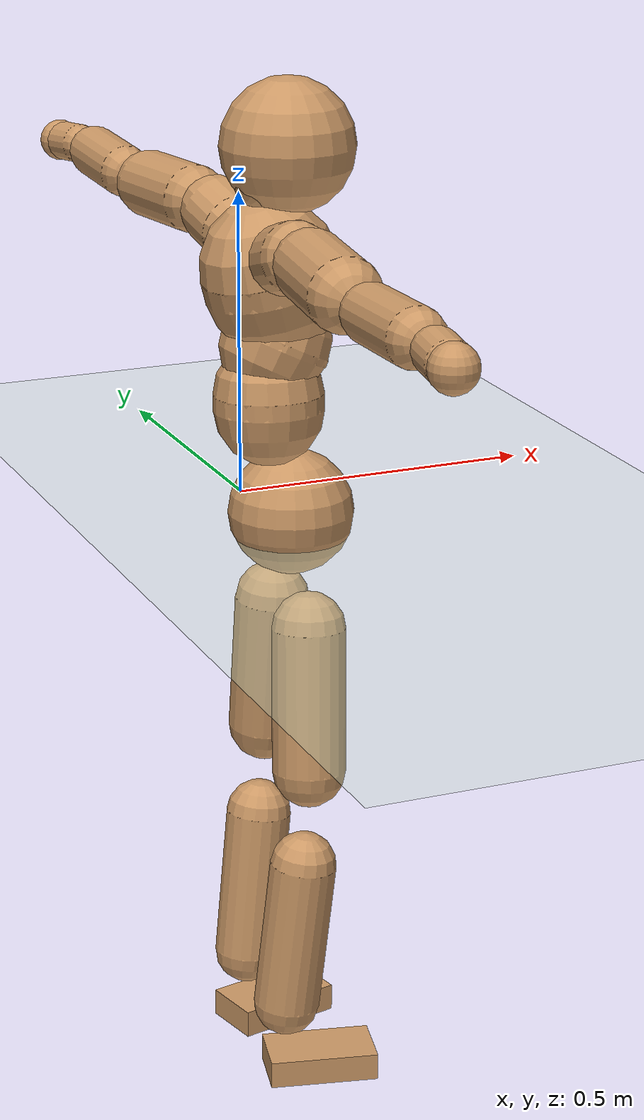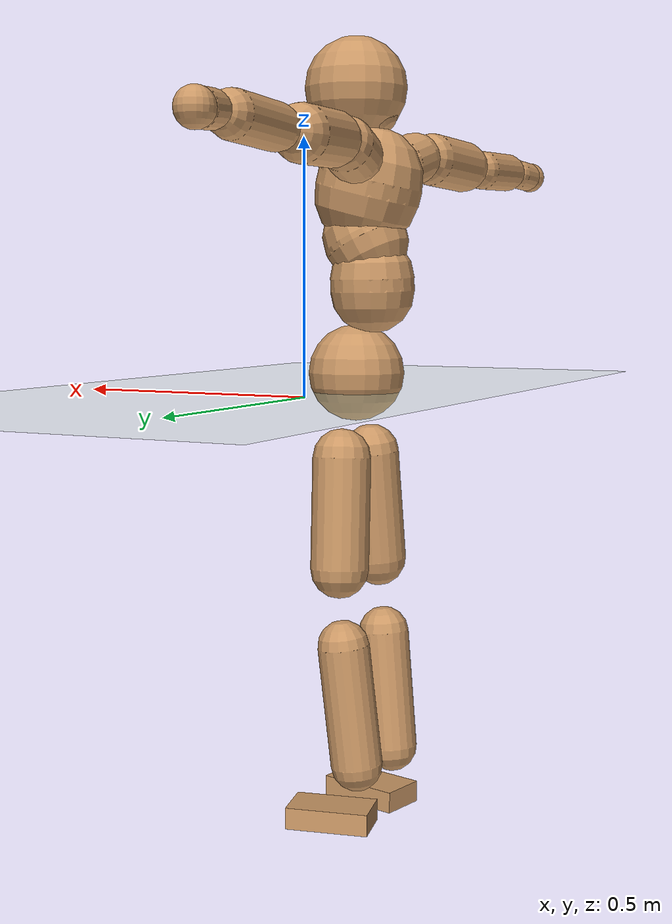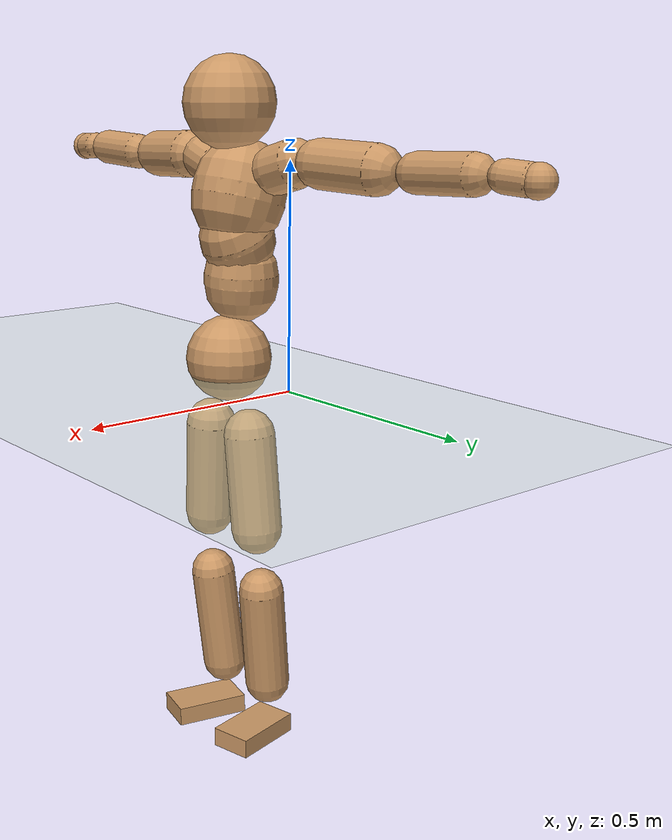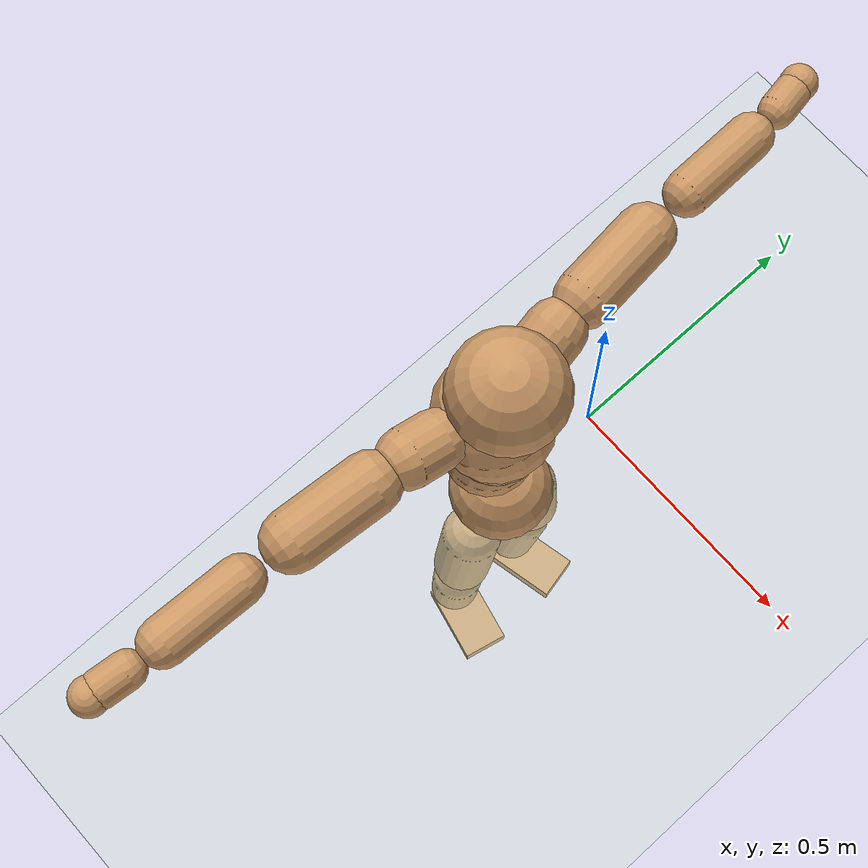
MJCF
<mujoco model="humanoid">
  <compiler coordinate="local"/>
  <default>
    <joint damping="0.0" armature="0.01" stiffness="0.0" limited="true"/>
    <geom conaffinity="1" condim="3" contype="7" margin="0.001" rgba="0.8 0.6 .4 1"/>
  </default>
  <asset>
    <texture type="skybox" builtin="gradient" rgb1=".4 .5 .6" rgb2="0 0 0" width="100" height="100"/>
    <texture builtin="flat" height="1278" mark="cross" markrgb="1 1 1" name="texgeom" random="0.01" rgb1="0.8 0.6 0.4" rgb2="0.8 0.6 0.4" type="cube" width="127"/>
    <texture builtin="checker" height="100" name="texplane" rgb1="0 0 0" rgb2="0.8 0.8 0.8" type="2d" width="100"/>
    <material name="MatPlane" reflectance="0.5" shininess="1" specular="1" texrepeat="60 60" texture="texplane"/>
    <material name="geom" texture="texgeom" texuniform="true"/>
  </asset>
  <worldbody>
    <light cutoff="100" diffuse="1 1 1" dir="-0 0 -1.3" directional="true" exponent="1" pos="0 0 1.3" specular=".1 .1 .1"/>
    <geom conaffinity="1" condim="3" name="floor" pos="0 0 0" rgba="0.8 0.9 0.8 1" size="100 100 .2" type="plane" material="MatPlane"/>
    <body name="Pelvis" pos="-0.0029 -0.226 0.0376">
      <freejoint name="Pelvis"/>
      <geom type="sphere" contype="1" conaffinity="1" density="500" size="0.0999" pos="0.0000 0.0000 0.0000" name="Pelvis"/>
      <body name="L_Hip" pos="-0.0012 0.0671 -0.0945">
        <joint name="L_Hip_x" type="hinge" pos="0 0 0" axis="1 0 0" stiffness="800" damping="80" armature="0.02" range="-180.0000 180.0000"/>
        <joint name="L_Hip_y" type="hinge" pos="0 0 0" axis="0 1 0" stiffness="800" damping="80" armature="0.02" range="-180.0000 180.0000"/>
        <joint name="L_Hip_z" type="hinge" pos="0 0 0" axis="0 0 1" stiffness="800" damping="80" armature="0.02" range="-180.0000 180.0000"/>
        <geom type="capsule" contype="1" conaffinity="1" density="500" fromto="-0.0017 0.0067 -0.0759 -0.0069 0.0266 -0.3037" size="0.0598" name="L_Hip"/>
        <body name="L_Knee" pos="-0.0087 0.0333 -0.3796">
          <joint name="L_Knee_x" type="hinge" pos="0 0 0" axis="1 0 0" stiffness="800" damping="80" armature="0.02" range="-180.0000 180.0000"/>
          <joint name="L_Knee_y" type="hinge" pos="0 0 0" axis="0 1 0" stiffness="800" damping="80" armature="0.02" range="-180.0000 180.0000"/>
          <joint name="L_Knee_z" type="hinge" pos="0 0 0" axis="0 0 1" stiffness="800" damping="80" armature="0.02" range="-180.0000 180.0000"/>
          <geom type="capsule" contype="1" conaffinity="1" density="500" fromto="-0.0088 -0.0031 -0.0829 -0.0351 -0.0124 -0.3316" size="0.0536" name="L_Knee"/>
          <body name="L_Ankle" pos="-0.0439 -0.0155 -0.4145">
            <joint name="L_Ankle_x" type="hinge" pos="0 0 0" axis="1 0 0" stiffness="800" damping="80" armature="0.02" range="-180.0000 180.0000"/>
            <joint name="L_Ankle_y" type="hinge" pos="0 0 0" axis="0 1 0" stiffness="800" damping="80" armature="0.02" range="-180.0000 180.0000"/>
            <joint name="L_Ankle_z" type="hinge" pos="0 0 0" axis="0 0 1" stiffness="800" damping="80" armature="0.02" range="-180.0000 180.0000"/>
            <geom type="box" contype="1" conaffinity="1" density="500" pos="0.0611 0.0134 -0.0284" size="0.0864 0.0495 0.0225" quat="0.9942 0.0000 0.0000 0.1080" name="L_Ankle"/>
            <body name="L_Toe" pos="0.1223 0.0269 -0.0568">
              <joint name="L_Toe_x" type="hinge" pos="0 0 0" axis="1 0 0" stiffness="500" damping="50" armature="0.02" range="-180.0000 180.0000"/>
              <joint name="L_Toe_y" type="hinge" pos="0 0 0" axis="0 1 0" stiffness="500" damping="50" armature="0.02" range="-180.0000 180.0000"/>
              <joint name="L_Toe_z" type="hinge" pos="0 0 0" axis="0 0 1" stiffness="500" damping="50" armature="0.02" range="-180.0000 180.0000"/>
              <geom type="box" contype="1" conaffinity="1" density="500" pos="0.0000 0.0000 0.0273" size="0.0011 0.0025 0.0011" quat="0.9935 0.0000 0.0000 0.1139" name="L_Toe"/>
            </body>
          </body>
        </body>
      </body>
      <body name="R_Hip" pos="0.0025 -0.0663 -0.0945">
        <joint name="R_Hip_x" type="hinge" pos="0 0 0" axis="1 0 0" stiffness="800" damping="80" armature="0.02" range="-180.0000 180.0000"/>
        <joint name="R_Hip_y" type="hinge" pos="0 0 0" axis="0 1 0" stiffness="800" damping="80" armature="0.02" range="-180.0000 180.0000"/>
        <joint name="R_Hip_z" type="hinge" pos="0 0 0" axis="0 0 1" stiffness="800" damping="80" armature="0.02" range="-180.0000 180.0000"/>
        <geom type="capsule" contype="1" conaffinity="1" density="500" fromto="-0.0028 -0.0074 -0.0778 -0.0112 -0.0296 -0.3112" size="0.0588" name="R_Hip"/>
        <body name="R_Knee" pos="-0.014 -0.037 -0.389">
          <joint name="R_Knee_x" type="hinge" pos="0 0 0" axis="1 0 0" stiffness="800" damping="80" armature="0.02" range="-180.0000 180.0000"/>
          <joint name="R_Knee_y" type="hinge" pos="0 0 0" axis="0 1 0" stiffness="800" damping="80" armature="0.02" range="-180.0000 180.0000"/>
          <joint name="R_Knee_z" type="hinge" pos="0 0 0" axis="0 0 1" stiffness="800" damping="80" armature="0.02" range="-180.0000 180.0000"/>
          <geom type="capsule" contype="1" conaffinity="1" density="500" fromto="-0.0085 0.0035 -0.0833 -0.0339 0.0139 -0.3331" size="0.0534" name="R_Knee"/>
          <body name="R_Ankle" pos="-0.0424 0.0174 -0.4164">
            <joint name="R_Ankle_x" type="hinge" pos="0 0 0" axis="1 0 0" stiffness="800" damping="80" armature="0.02" range="-180.0000 180.0000"/>
            <joint name="R_Ankle_y" type="hinge" pos="0 0 0" axis="0 1 0" stiffness="800" damping="80" armature="0.02" range="-180.0000 180.0000"/>
            <joint name="R_Ankle_z" type="hinge" pos="0 0 0" axis="0 0 1" stiffness="800" damping="80" armature="0.02" range="-180.0000 180.0000"/>
            <geom type="box" contype="1" conaffinity="1" density="500" pos="0.0632 -0.0143 -0.0246" size="0.0884 0.05 0.0223" quat="0.9938 0.0000 0.0000 -0.1112" name="R_Ankle"/>
            <body name="R_Toe" pos="0.1263 -0.0286 -0.0493">
              <joint name="R_Toe_x" type="hinge" pos="0 0 0" axis="1 0 0" stiffness="500" damping="50" armature="0.02" range="-180.0000 180.0000"/>
              <joint name="R_Toe_y" type="hinge" pos="0 0 0" axis="0 1 0" stiffness="500" damping="50" armature="0.02" range="-180.0000 180.0000"/>
              <joint name="R_Toe_z" type="hinge" pos="0 0 0" axis="0 0 1" stiffness="500" damping="50" armature="0.02" range="-180.0000 180.0000"/>
              <geom type="box" contype="1" conaffinity="1" density="500" pos="0.0000 0.0000 0.0244" size="0.0011 0.0025 0.0011" quat="0.9948 0.0000 0.0000 -0.1021" name="R_Toe"/>
            </body>
          </body>
        </body>
      </body>
      <body name="Torso" pos="-0.0364 -0.0023 0.1159">
        <joint name="Torso_x" type="hinge" pos="0 0 0" axis="1 0 0" stiffness="1000" damping="100" armature="0.02" range="-180.0000 180.0000"/>
        <joint name="Torso_y" type="hinge" pos="0 0 0" axis="0 1 0" stiffness="1000" damping="100" armature="0.02" range="-180.0000 180.0000"/>
        <joint name="Torso_z" type="hinge" pos="0 0 0" axis="0 0 1" stiffness="1000" damping="100" armature="0.02" range="-180.0000 180.0000"/>
        <geom type="capsule" contype="1" conaffinity="1" density="500" fromto="0.0000 0.0042 0.0788 0.0000 0.0028 0.0525" size="0.0867" name="Torso"/>
        <body name="Spine" pos="0.0001 0.0071 0.1313">
          <joint name="Spine_x" type="hinge" pos="0 0 0" axis="1 0 0" stiffness="1000" damping="100" armature="0.02" range="-180.0000 180.0000"/>
          <joint name="Spine_y" type="hinge" pos="0 0 0" axis="0 1 0" stiffness="1000" damping="100" armature="0.02" range="-180.0000 180.0000"/>
          <joint name="Spine_z" type="hinge" pos="0 0 0" axis="0 0 1" stiffness="1000" damping="100" armature="0.02" range="-180.0000 180.0000"/>
          <geom type="capsule" contype="1" conaffinity="1" density="500" fromto="0.0161 0.0008 0.0326 0.0107 0.0005 0.0218" size="0.0864" name="Spine"/>
          <body name="Chest" pos="0.0269 0.0014 0.0544">
            <joint name="Chest_x" type="hinge" pos="0 0 0" axis="1 0 0" stiffness="1000" damping="100" armature="0.02" range="-180.0000 180.0000"/>
            <joint name="Chest_y" type="hinge" pos="0 0 0" axis="0 1 0" stiffness="1000" damping="100" armature="0.02" range="-180.0000 180.0000"/>
            <joint name="Chest_z" type="hinge" pos="0 0 0" axis="0 0 1" stiffness="1000" damping="100" armature="0.02" range="-180.0000 180.0000"/>
            <geom type="capsule" contype="1" conaffinity="1" density="500" fromto="-0.0243 -0.0013 0.0932 -0.0162 -0.0009 0.0621" size="0.1081" name="Chest"/>
            <body name="Neck" pos="-0.044 -0.003 0.2154">
              <joint name="Neck_x" type="hinge" pos="0 0 0" axis="1 0 0" stiffness="500" damping="50" armature="0.02" range="-180.0000 180.0000"/>
              <joint name="Neck_y" type="hinge" pos="0 0 0" axis="0 1 0" stiffness="500" damping="50" armature="0.02" range="-180.0000 180.0000"/>
              <joint name="Neck_z" type="hinge" pos="0 0 0" axis="0 0 1" stiffness="500" damping="50" armature="0.02" range="-180.0000 180.0000"/>
              <geom type="capsule" contype="1" conaffinity="1" density="500" fromto="0.0104 0.0009 0.0121 0.0415 0.0036 0.0486" size="0.0471" name="Neck"/>
              <body name="Head" pos="0.0518 0.0045 0.0607">
                <joint name="Head_x" type="hinge" pos="0 0 0" axis="1 0 0" stiffness="500" damping="50" armature="0.02" range="-180.0000 180.0000"/>
                <joint name="Head_y" type="hinge" pos="0 0 0" axis="0 1 0" stiffness="500" damping="50" armature="0.02" range="-180.0000 180.0000"/>
                <joint name="Head_z" type="hinge" pos="0 0 0" axis="0 0 1" stiffness="500" damping="50" armature="0.02" range="-180.0000 180.0000"/>
                <geom type="sphere" contype="1" conaffinity="1" density="500" size="0.1052" pos="0.0000 0.0000 0.0000" name="Head"/>
              </body>
            </body>
            <body name="L_Thorax" pos="-0.0375 0.0858 0.1266">
              <joint name="L_Thorax_x" type="hinge" pos="0 0 0" axis="1 0 0" stiffness="500" damping="50" armature="0.02" range="-180.0000 180.0000"/>
              <joint name="L_Thorax_y" type="hinge" pos="0 0 0" axis="0 1 0" stiffness="500" damping="50" armature="0.02" range="-180.0000 180.0000"/>
              <joint name="L_Thorax_z" type="hinge" pos="0 0 0" axis="0 0 1" stiffness="500" damping="50" armature="0.02" range="-180.0000 180.0000"/>
              <geom type="capsule" contype="1" conaffinity="1" density="500" fromto="-0.0026 0.0192 0.0054 -0.0104 0.0770 0.0214" size="0.0557" name="L_Thorax"/>
              <body name="L_Shoulder" pos="-0.013 0.0962 0.0268">
                <joint name="L_Shoulder_x" type="hinge" pos="0 0 0" axis="1 0 0" stiffness="500" damping="50" armature="0.02" range="-720.0000 720.0000"/>
                <joint name="L_Shoulder_y" type="hinge" pos="0 0 0" axis="0 1 0" stiffness="500" damping="50" armature="0.02" range="-720.0000 720.0000"/>
                <joint name="L_Shoulder_z" type="hinge" pos="0 0 0" axis="0 0 1" stiffness="500" damping="50" armature="0.02" range="-720.0000 720.0000"/>
                <geom type="capsule" contype="1" conaffinity="1" density="500" fromto="-0.0058 0.0533 -0.0018 -0.0233 0.2133 -0.0072" size="0.0545" name="L_Shoulder"/>
                <body name="L_Elbow" pos="-0.0291 0.2667 -0.009">
                  <joint name="L_Elbow_x" type="hinge" pos="0 0 0" axis="1 0 0" stiffness="500" damping="50" armature="0.02" range="-720.0000 720.0000"/>
                  <joint name="L_Elbow_y" type="hinge" pos="0 0 0" axis="0 1 0" stiffness="500" damping="50" armature="0.02" range="-720.0000 720.0000"/>
                  <joint name="L_Elbow_z" type="hinge" pos="0 0 0" axis="0 0 1" stiffness="500" damping="50" armature="0.02" range="-720.0000 720.0000"/>
                  <geom type="capsule" contype="1" conaffinity="1" density="500" fromto="-0.0006 0.0510 0.0017 -0.0024 0.2041 0.0070" size="0.0428" name="L_Elbow"/>
                  <body name="L_Wrist" pos="-0.003 0.2551 0.0087">
                    <joint name="L_Wrist_x" type="hinge" pos="0 0 0" axis="1 0 0" stiffness="300" damping="30" armature="0.02" range="-180.0000 180.0000"/>
                    <joint name="L_Wrist_y" type="hinge" pos="0 0 0" axis="0 1 0" stiffness="300" damping="30" armature="0.02" range="-180.0000 180.0000"/>
                    <joint name="L_Wrist_z" type="hinge" pos="0 0 0" axis="0 0 1" stiffness="300" damping="30" armature="0.02" range="-180.0000 180.0000"/>
                    <geom type="capsule" contype="1" conaffinity="1" density="500" fromto="-0.0033 0.0173 -0.0013 -0.0130 0.0694 -0.0051" size="0.0331" name="L_Wrist"/>
                    <body name="L_Hand" pos="-0.0163 0.0867 -0.0064">
                      <joint name="L_Hand_x" type="hinge" pos="0 0 0" axis="1 0 0" stiffness="300" damping="30" armature="0.02" range="-180.0000 180.0000"/>
                      <joint name="L_Hand_y" type="hinge" pos="0 0 0" axis="0 1 0" stiffness="300" damping="30" armature="0.02" range="-180.0000 180.0000"/>
                      <joint name="L_Hand_z" type="hinge" pos="0 0 0" axis="0 0 1" stiffness="300" damping="30" armature="0.02" range="-180.0000 180.0000"/>
                      <geom type="sphere" contype="1" conaffinity="1" density="500" size="0.0346" pos="0.0000 0.0000 0.0000" name="L_Hand"/>
                    </body>
                  </body>
                </body>
              </body>
            </body>
            <body name="R_Thorax" pos="-0.0402 -0.0893 0.1239">
              <joint name="R_Thorax_x" type="hinge" pos="0 0 0" axis="1 0 0" stiffness="500" damping="50" armature="0.02" range="-180.0000 180.0000"/>
              <joint name="R_Thorax_y" type="hinge" pos="0 0 0" axis="0 1 0" stiffness="500" damping="50" armature="0.02" range="-180.0000 180.0000"/>
              <joint name="R_Thorax_z" type="hinge" pos="0 0 0" axis="0 0 1" stiffness="500" damping="50" armature="0.02" range="-180.0000 180.0000"/>
              <geom type="capsule" contype="1" conaffinity="1" density="500" fromto="-0.0022 -0.0203 0.0058 -0.0086 -0.0812 0.0233" size="0.0548" name="R_Thorax"/>
              <body name="R_Shoulder" pos="-0.0108 -0.1015 0.0291">
                <joint name="R_Shoulder_x" type="hinge" pos="0 0 0" axis="1 0 0" stiffness="500" damping="50" armature="0.02" range="-720.0000 720.0000"/>
                <joint name="R_Shoulder_y" type="hinge" pos="0 0 0" axis="0 1 0" stiffness="500" damping="50" armature="0.02" range="-720.0000 720.0000"/>
                <joint name="R_Shoulder_z" type="hinge" pos="0 0 0" axis="0 0 1" stiffness="500" damping="50" armature="0.02" range="-720.0000 720.0000"/>
                <geom type="capsule" contype="1" conaffinity="1" density="500" fromto="-0.0046 -0.0517 -0.0018 -0.0185 -0.2067 -0.0071" size="0.0562" name="R_Shoulder"/>
                <body name="R_Elbow" pos="-0.0232 -0.2583 -0.0089">
                  <joint name="R_Elbow_x" type="hinge" pos="0 0 0" axis="1 0 0" stiffness="500" damping="50" armature="0.02" range="-720.0000 720.0000"/>
                  <joint name="R_Elbow_y" type="hinge" pos="0 0 0" axis="0 1 0" stiffness="500" damping="50" armature="0.02" range="-720.0000 720.0000"/>
                  <joint name="R_Elbow_z" type="hinge" pos="0 0 0" axis="0 0 1" stiffness="500" damping="50" armature="0.02" range="-720.0000 720.0000"/>
                  <geom type="capsule" contype="1" conaffinity="1" density="500" fromto="-0.0015 -0.0521 0.0018 -0.0061 -0.2086 0.0071" size="0.0438" name="R_Elbow"/>
                  <body name="R_Wrist" pos="-0.0076 -0.2607 0.0089">
                    <joint name="R_Wrist_x" type="hinge" pos="0 0 0" axis="1 0 0" stiffness="300" damping="30" armature="0.02" range="-180.0000 180.0000"/>
                    <joint name="R_Wrist_y" type="hinge" pos="0 0 0" axis="0 1 0" stiffness="300" damping="30" armature="0.02" range="-180.0000 180.0000"/>
                    <joint name="R_Wrist_z" type="hinge" pos="0 0 0" axis="0 0 1" stiffness="300" damping="30" armature="0.02" range="-180.0000 180.0000"/>
                    <geom type="capsule" contype="1" conaffinity="1" density="500" fromto="-0.0020 -0.0175 -0.0010 -0.0081 -0.0701 -0.0040" size="0.0342" name="R_Wrist"/>
                    <body name="R_Hand" pos="-0.0102 -0.0876 -0.005">
                      <joint name="R_Hand_x" type="hinge" pos="0 0 0" axis="1 0 0" stiffness="300" damping="30" armature="0.02" range="-180.0000 180.0000"/>
                      <joint name="R_Hand_y" type="hinge" pos="0 0 0" axis="0 1 0" stiffness="300" damping="30" armature="0.02" range="-180.0000 180.0000"/>
                      <joint name="R_Hand_z" type="hinge" pos="0 0 0" axis="0 0 1" stiffness="300" damping="30" armature="0.02" range="-180.0000 180.0000"/>
                      <geom type="sphere" contype="1" conaffinity="1" density="500" size="0.0353" pos="0.0000 0.0000 0.0000" name="R_Hand"/>
                    </body>
                  </body>
                </body>
              </body>
            </body>
          </body>
        </body>
      </body>
    </body>
  </worldbody>
  <actuator>
    <motor name="L_Hip_x" joint="L_Hip_x" gear="500"/>
    <motor name="L_Hip_y" joint="L_Hip_y" gear="500"/>
    <motor name="L_Hip_z" joint="L_Hip_z" gear="500"/>
    <motor name="L_Knee_x" joint="L_Knee_x" gear="500"/>
    <motor name="L_Knee_y" joint="L_Knee_y" gear="500"/>
    <motor name="L_Knee_z" joint="L_Knee_z" gear="500"/>
    <motor name="L_Ankle_x" joint="L_Ankle_x" gear="500"/>
    <motor name="L_Ankle_y" joint="L_Ankle_y" gear="500"/>
    <motor name="L_Ankle_z" joint="L_Ankle_z" gear="500"/>
    <motor name="L_Toe_x" joint="L_Toe_x" gear="500"/>
    <motor name="L_Toe_y" joint="L_Toe_y" gear="500"/>
    <motor name="L_Toe_z" joint="L_Toe_z" gear="500"/>
    <motor name="R_Hip_x" joint="R_Hip_x" gear="500"/>
    <motor name="R_Hip_y" joint="R_Hip_y" gear="500"/>
    <motor name="R_Hip_z" joint="R_Hip_z" gear="500"/>
    <motor name="R_Knee_x" joint="R_Knee_x" gear="500"/>
    <motor name="R_Knee_y" joint="R_Knee_y" gear="500"/>
    <motor name="R_Knee_z" joint="R_Knee_z" gear="500"/>
    <motor name="R_Ankle_x" joint="R_Ankle_x" gear="500"/>
    <motor name="R_Ankle_y" joint="R_Ankle_y" gear="500"/>
    <motor name="R_Ankle_z" joint="R_Ankle_z" gear="500"/>
    <motor name="R_Toe_x" joint="R_Toe_x" gear="500"/>
    <motor name="R_Toe_y" joint="R_Toe_y" gear="500"/>
    <motor name="R_Toe_z" joint="R_Toe_z" gear="500"/>
    <motor name="Torso_x" joint="Torso_x" gear="500"/>
    <motor name="Torso_y" joint="Torso_y" gear="500"/>
    <motor name="Torso_z" joint="Torso_z" gear="500"/>
    <motor name="Spine_x" joint="Spine_x" gear="500"/>
    <motor name="Spine_y" joint="Spine_y" gear="500"/>
    <motor name="Spine_z" joint="Spine_z" gear="500"/>
    <motor name="Chest_x" joint="Chest_x" gear="500"/>
    <motor name="Chest_y" joint="Chest_y" gear="500"/>
    <motor name="Chest_z" joint="Chest_z" gear="500"/>
    <motor name="Neck_x" joint="Neck_x" gear="500"/>
    <motor name="Neck_y" joint="Neck_y" gear="500"/>
    <motor name="Neck_z" joint="Neck_z" gear="500"/>
    <motor name="Head_x" joint="Head_x" gear="500"/>
    <motor name="Head_y" joint="Head_y" gear="500"/>
    <motor name="Head_z" joint="Head_z" gear="500"/>
    <motor name="L_Thorax_x" joint="L_Thorax_x" gear="500"/>
    <motor name="L_Thorax_y" joint="L_Thorax_y" gear="500"/>
    <motor name="L_Thorax_z" joint="L_Thorax_z" gear="500"/>
    <motor name="L_Shoulder_x" joint="L_Shoulder_x" gear="500"/>
    <motor name="L_Shoulder_y" joint="L_Shoulder_y" gear="500"/>
    <motor name="L_Shoulder_z" joint="L_Shoulder_z" gear="500"/>
    <motor name="L_Elbow_x" joint="L_Elbow_x" gear="500"/>
    <motor name="L_Elbow_y" joint="L_Elbow_y" gear="500"/>
    <motor name="L_Elbow_z" joint="L_Elbow_z" gear="500"/>
    <motor name="L_Wrist_x" joint="L_Wrist_x" gear="500"/>
    <motor name="L_Wrist_y" joint="L_Wrist_y" gear="500"/>
    <motor name="L_Wrist_z" joint="L_Wrist_z" gear="500"/>
    <motor name="L_Hand_x" joint="L_Hand_x" gear="500"/>
    <motor name="L_Hand_y" joint="L_Hand_y" gear="500"/>
    <motor name="L_Hand_z" joint="L_Hand_z" gear="500"/>
    <motor name="R_Thorax_x" joint="R_Thorax_x" gear="500"/>
    <motor name="R_Thorax_y" joint="R_Thorax_y" gear="500"/>
    <motor name="R_Thorax_z" joint="R_Thorax_z" gear="500"/>
    <motor name="R_Shoulder_x" joint="R_Shoulder_x" gear="500"/>
    <motor name="R_Shoulder_y" joint="R_Shoulder_y" gear="500"/>
    <motor name="R_Shoulder_z" joint="R_Shoulder_z" gear="500"/>
    <motor name="R_Elbow_x" joint="R_Elbow_x" gear="500"/>
    <motor name="R_Elbow_y" joint="R_Elbow_y" gear="500"/>
    <motor name="R_Elbow_z" joint="R_Elbow_z" gear="500"/>
    <motor name="R_Wrist_x" joint="R_Wrist_x" gear="500"/>
    <motor name="R_Wrist_y" joint="R_Wrist_y" gear="500"/>
    <motor name="R_Wrist_z" joint="R_Wrist_z" gear="500"/>
    <motor name="R_Hand_x" joint="R_Hand_x" gear="500"/>
    <motor name="R_Hand_y" joint="R_Hand_y" gear="500"/>
    <motor name="R_Hand_z" joint="R_Hand_z" gear="500"/>
  </actuator>
  <contact>
    <exclude body1="Torso" body2="Chest"/>
    <exclude body1="Head" body2="Chest"/>
    <exclude body1="R_Knee" body2="R_Toe"/>
    <exclude body1="R_Knee" body2="L_Ankle"/>
    <exclude body1="R_Knee" body2="L_Toe"/>
    <exclude body1="L_Knee" body2="L_Toe"/>
    <exclude body1="L_Knee" body2="R_Ankle"/>
    <exclude body1="L_Knee" body2="R_Toe"/>
    <exclude body1="L_Shoulder" body2="Chest"/>
    <exclude body1="R_Shoulder" body2="Chest"/>
  </contact>
  <sensor/>
  <size njmax="700" nconmax="700"/>
</mujoco>
